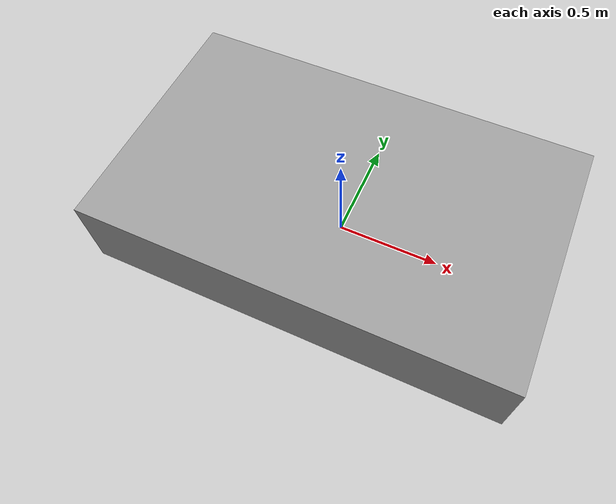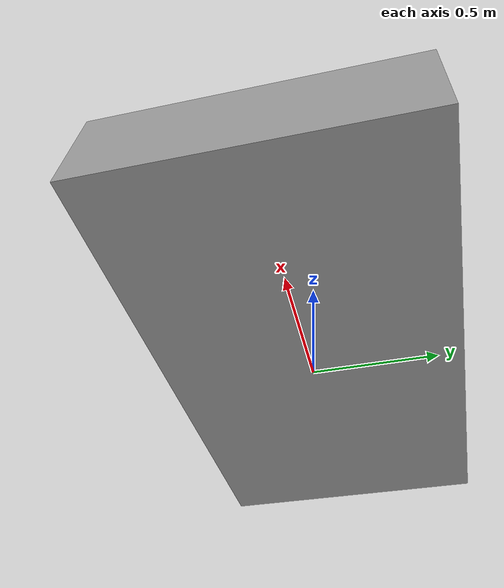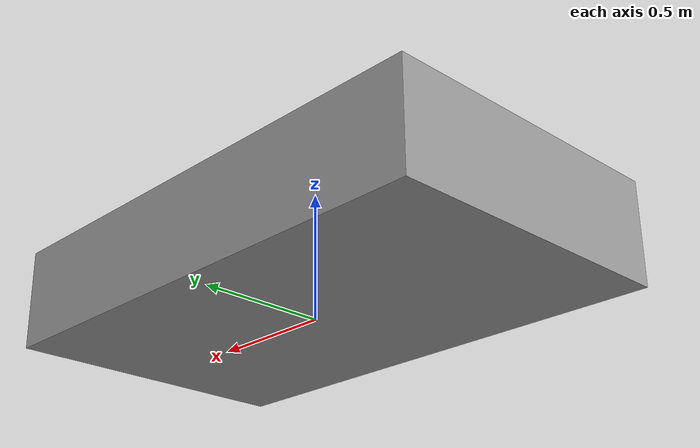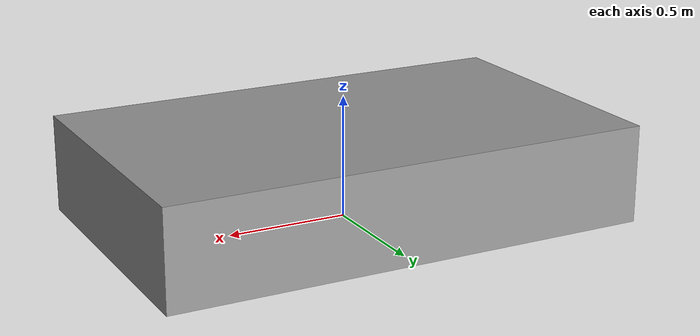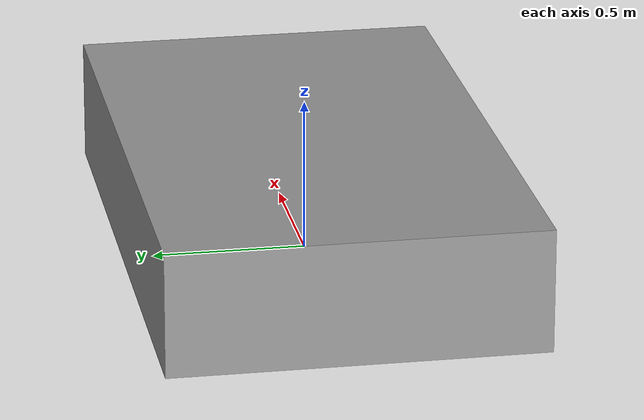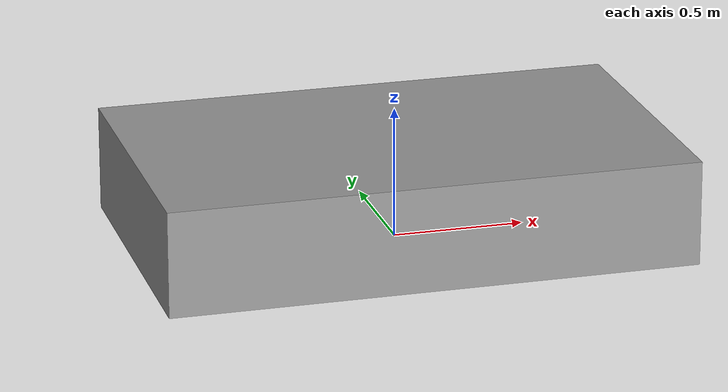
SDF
<?xml version="1.0" ?>
<sdf version="1.6">
  <model name="turtlebot3_del">
    <static>false</static>

    <!-- Base Link -->
    <link name="base_link">
      <pose>0 0 0.2 0 0 0</pose>
      <collision name="collision">
        <geometry>
          <box><size>2.0 1.2 0.4</size></box>
        </geometry>
      </collision>
      <visual name="visual">
        <geometry>
          <box><size>2.0 1.2 0.4</size></box>
        </geometry>
        <material><ambient>0.6 0.6 0.6 1</ambient></material>
      </visual>
    </link>

    <!-- Left Wheel -->
    <link name="wheel_left">
      <pose>0 -0.3 0.1 0 0 0</pose>
      <collision name="collision">
        <geometry>
          <cylinder><radius>0.1</radius><length>0.05</length></cylinder>
        </geometry>
      </collision>
      <visual name="visual">
        <geometry>
          <cylinder><radius>0.1</radius><length>0.05</length></cylinder>
        </geometry>
      </visual>
    </link>

    <!-- Right Wheel -->
    <link name="wheel_right">
      <pose>0 0.3 0.1 0 0 0</pose>
      <collision name="collision">
        <geometry>
          <cylinder><radius>0.1</radius><length>0.05</length></cylinder>
        </geometry>
      </collision>
      <visual name="visual">
        <geometry>
          <cylinder><radius>0.1</radius><length>0.05</length></cylinder>
        </geometry>
      </visual>
    </link>

    <!-- Wheel Joints -->
    <joint name="left_joint" type="revolute">
      <parent>base_link</parent>
      <child>wheel_left</child>
      <axis>
        <xyz>0 1 0</xyz>
        <limit><lower>-1e16</lower><upper>1e16</upper></limit>
      </axis>
    </joint>

    <joint name="right_joint" type="revolute">
      <parent>base_link</parent>
      <child>wheel_right</child>
      <axis>
        <xyz>0 1 0</xyz>
        <limit><lower>-1e16</lower><upper>1e16</upper></limit>
      </axis>
    </joint>

    <!-- Front Camera -->
    <link name="camera_link">
      <pose>1.0 0 0.4 0 0 0</pose>
      <sensor name="front_camera" type="camera">
        <camera>
          <horizontal_fov>1.047</horizontal_fov>
          <image><width>640</width><height>480</height><format>R8G8B8</format></image>
          <clip><near>0.1</near><far>100</far></clip>
        </camera>
        <always_on>1</always_on>
        <update_rate>30</update_rate>
        <visualize>true</visualize>
      </sensor>
    </link>

    <!-- Differential Drive Plugin -->
    <plugin name="diff_drive_controller" filename="libgazebo_ros_diff_drive.so">
      <ros><namespace>/</namespace></ros>
      <left_joint>left_joint</left_joint>
      <right_joint>right_joint</right_joint>
      <wheel_separation>0.6</wheel_separation>
      <wheel_diameter>0.2</wheel_diameter>
      <command_topic>cmd_vel</command_topic>
      <odometry_topic>odom</odometry_topic>
      <odometry_frame>odom</odometry_frame>
      <robot_base_frame>base_link</robot_base_frame>
      <update_rate>50</update_rate>
    </plugin>

  </model>
</sdf>
